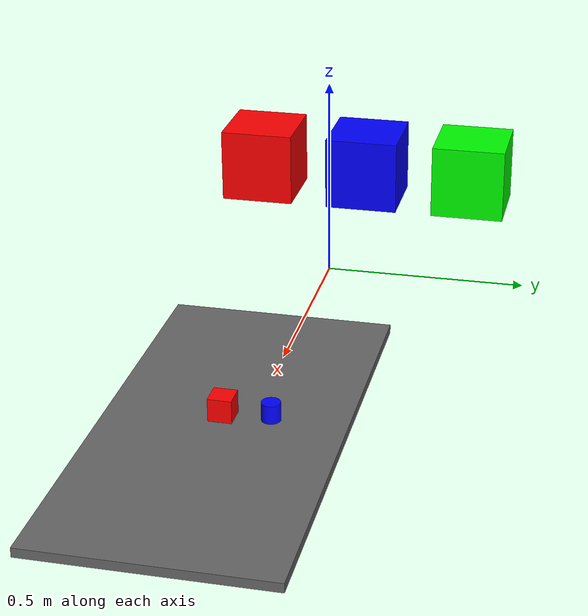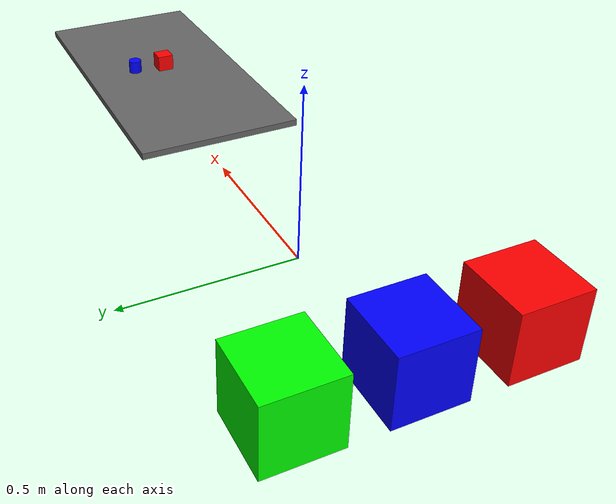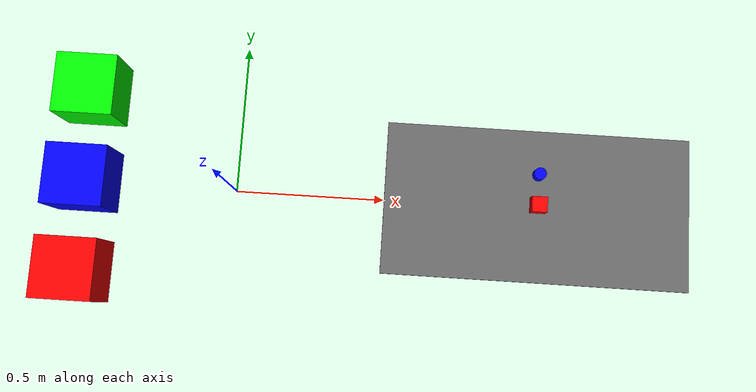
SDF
<sdf version="1.6">
 <world name="conveyor_sorting_world">
  <joint name="panda_base_to_cart" type="fixed">
   <parent>tri_cart::homecart_baseplate_link</parent>
   <child>panda::panda_link0</child>
  </joint>
  <model name="conveyor_belt">
   <static>true</static>
   <pose>1 0 0.1 0 0 0</pose>
   <link name="belt_surface">
    <visual name="visual">
     <geometry><box><size>1.0 0.5 0.02</size></box></geometry>
     <material><diffuse>0.4 0.4 0.4 1.0</diffuse></material>
    </visual>
    <collision name="collision"><geometry><box><size>1.0 0.5 0.02</size></box></geometry></collision>
   </link>
  </model>
  <model name="bin_red">
   <static>true</static>
   <pose>-0.5 -0.3 0.1 0 0 0</pose>
   <link name="link">
    <visual name="visual">
     <geometry><box><size>0.2 0.2 0.2</size></box></geometry>
     <material><diffuse>1 0 0 1</diffuse></material>
    </visual>
   </link>
  </model>
  <model name="bin_blue">
   <static>true</static>
   <pose>-0.5 0 0.1 0 0 0</pose>
   <link name="link">
    <visual name="visual">
     <geometry><box><size>0.2 0.2 0.2</size></box></geometry>
     <material><diffuse>0 0 1 1</diffuse></material>
    </visual>
   </link>
  </model>
  <model name="bin_green">
   <static>true</static>
   <pose>-0.5 0.3 0.1 0 0 0</pose>
   <link name="link">
    <visual name="visual">
     <geometry><box><size>0.2 0.2 0.2</size></box></geometry>
     <material><diffuse>0 1 0 1</diffuse></material>
    </visual>
   </link>
  </model>
  <model name="object_cube_1">
   <pose>1 0 0.15 0 0 0</pose>
   <link name="link">
    <inertial>
     <mass>0.1</mass>
     <inertia><ixx>8.33e-5</ixx><iyy>8.33e-5</iyy><izz>8.33e-5</izz><ixy>0</ixy><ixz>0</ixz><iyz>0</iyz></inertia>
    </inertial>
    <collision name="collision">
     <geometry><box><size>0.05 0.05 0.05</size></box></geometry>
     <proximity_properties><mu_dynamic>0.5</mu_dynamic><mu_static>0.5</mu_static></proximity_properties>
    </collision>
    <visual name="visual">
     <geometry><box><size>0.05 0.05 0.05</size></box></geometry>
     <material><diffuse>1 0 0 1</diffuse></material>
    </visual>
   </link>
  </model>
  <model name="object_cylinder_1">
   <pose>1 0.1 0.15 0 0 0</pose>
   <link name="link">
    <inertial>
     <mass>0.05</mass>
     <inertia><ixx>1.67e-5</ixx><iyy>1.67e-5</iyy><izz>3.33e-5</izz><ixy>0</ixy><ixz>0</ixz><iyz>0</iyz></inertia>
    </inertial>
    <collision name="collision">
     <geometry><cylinder><radius>0.02</radius><length>0.04</length></cylinder></geometry>
     <proximity_properties><mu_dynamic>0.5</mu_dynamic><mu_static>0.5</mu_static></proximity_properties>
    </collision>
    <visual name="visual">
     <geometry><cylinder><radius>0.02</radius><length>0.04</length></cylinder></geometry>
     <material><diffuse>0 0 1 1</diffuse></material>
    </visual>
   </link>
  </model>
 </world>
</sdf>
